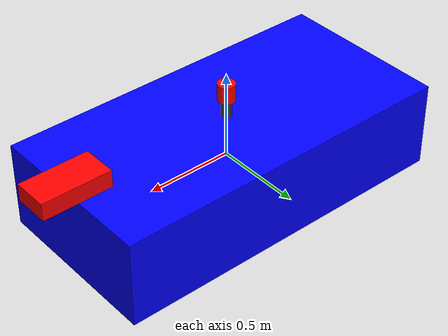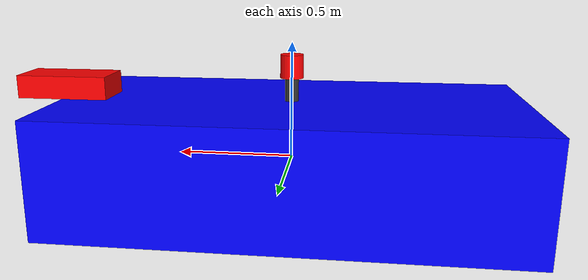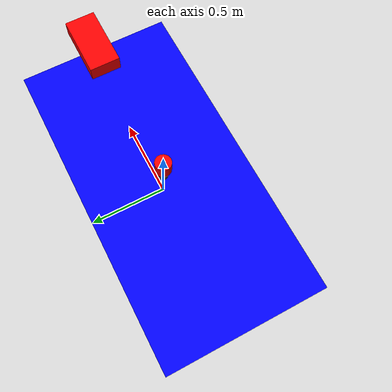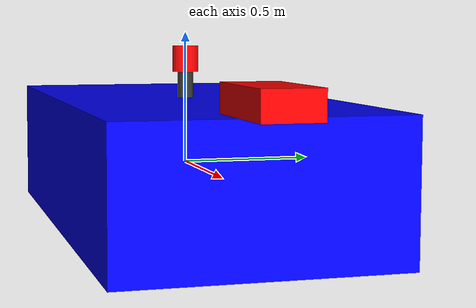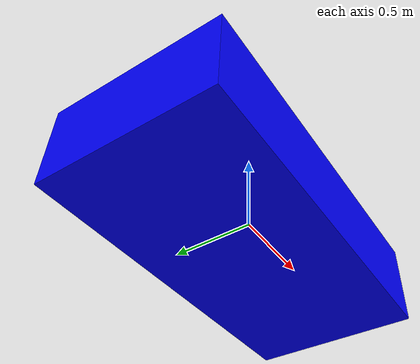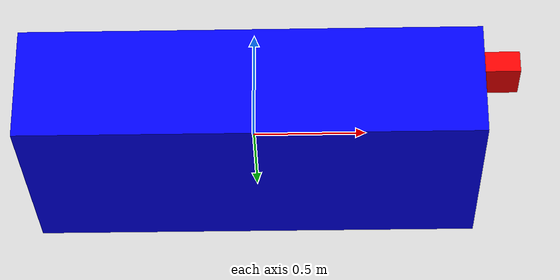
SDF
<?xml version="1.0"?>
<sdf version="1.9" xmlns:ignition="http://sdformat.org/schemas/ignition">
    <model name='chassis_model'>
        <link name='chassis_link'>

            <!-- 차체에 실질적인 IMU 센서 부착-->
            <sensor name="imu_sensor" type="imu">
                <always_on>1</always_on>
                <update_rate>30</update_rate>
                <visualize>true</visualize>
                <topic>imu</topic>
            </sensor>
            <!-- 차체에 실질적인 LIDAR 센서 부착-->
            <!-- mac m2 환경에서 호환성 문제 지속 발생-->
            <!-- lidar_frame의 위치 (car.sdf에서 1.05 0 0.5로 정의됨)를 chassis_link 기준으로 직접 설정 -->

            <!-- 라이다 센서와 차체 사이의 빈공간을 메꾸기 위한 링크 추가-->
            <visual name='lidar_empty_space_visual'>
                <pose>0 0 0.3 0 0 0</pose> <!--빈 공간의 좌표-->
                <geometry>
                    <cylinder> <!--같은 원통 모양으로 하되, 센서보다 반지름 조금 작게-->
                        <radius>0.03</radius>
                        <length>0.1</length>
                    </cylinder>
                </geometry>
                <material>
                    <ambient>0.2 0.2 0.2 1</ambient>
                    <diffuse>0.2 0.2 0.2 1</diffuse>
                </material>
            </visual>

            <collision name='lidar_empty_space_collision'>
                <pose>0 0 0.3 0 0 0</pose> <!--빈 공간의 좌표, 위와 동일-->
                <geometry>
                    <cylinder>
                        <radius>0.03</radius>
                        <length>0.1</length>
                    </cylinder>
                </geometry>
            </collision>

            <!-- 라이다 센서 위치를 시각적으로 표시하기 위한 visual 추가 -->
            <visual name='lidar_visual'>
                <pose>0 0 0.4 0 0 0</pose>
                <geometry>
                    <cylinder>
                        <radius>0.05</radius>
                        <length>0.1</length>
                    </cylinder>
                </geometry>
                <material>
                    <ambient>1.0 0.0 0.0 1</ambient>
                    <diffuse>1.0 0.0 0.0 1</diffuse>
                    <specular>1.0 0.0 0.0 1</specular>
                </material>
            </visual>
            <!--현실 세계를 생각하면 라이다 센서를 360도 돌릴려면 안에 있는 모터가 360도 돌아가면서 센서를 쏘는거라서 각 방향별로 시간차가 발생한다고함.-->
            <!--단순히 라이다 센서 태그 하나 넣고 각도를 360도 돌아라고 하면 현실 세계랑 조금 안맞는 것 같은 느낌이 있어서 상하좌우 각 방면에 카메라를 하나씩 두는 것도 고민을 했었는데 -->
            <!--일단은 완벽한 현실 재현보다는 시뮬레이션 환경에서 잘 돌아가는 강화학습 에이전트를 만드는게 우선이라고 생각해서 이렇게 진행했음.-->
            <!--update_rate를 5로 지정해둬서 0.2초에 한번씩 시뮬레이션 세상에서 멈추고 뽑아주는 거라는데 일단은 넘어감-->
            <sensor name='gpu_lidar' type='gpu_lidar'>
                <pose>0 0 0.4 0 0 0</pose>
                <topic>lidar</topic>
                <update_rate>20</update_rate>
                <ignition:frame_id>lidar_frame</ignition:frame_id> <!--ROS에서 쓰기 편하게 짧은 이름으로 해주는 것이라고 함-->
                <ray>
                    <scan>
                        <horizontal>
                            <samples>360</samples>
                            <resolution>1</resolution>
                            <min_angle>-3.141592</min_angle>
                            <max_angle>3.141592</max_angle>
                        </horizontal>
                        <!-- 수직 방향으로도 스캔이 가능하지만 이번 과제에서는 거리를 측정해서 센서값 기반으로 장애물을 회피하는거지, 드론처럼 z축 이동하는 것이 아니기 때문에 최소화로 작성하고 사용은 안 할 것임.-->
                        <vertical>
                            <samples>1</samples>
                            <resolution>0.01</resolution>
                            <min_angle>0</min_angle>
                            <max_angle>0</max_angle>
                        </vertical>
                    </scan>
                    <range>
                        <min>0.18</min>
                        <max>10.0</max>
                        <resolution>0.01</resolution>
                    </range>
                </ray>
                <always_on>1</always_on>
                <visualize>true</visualize>
            </sensor>
            <!--SSH 터널링으로 넘어오기에 데이터가 크다는 오류가 계속 나와서 320*240을 160*120으로 줄이고 주기도 30->10으로 낮춤-->
            <!--카메라의 x좌표는 처음에 복잡하게 생각하기 싫어서 차체의 끝 좌표에 설치했는데 돌출형인게 카메라가 정면을 주시할 때 더 나은거 같아서 그대로 둠.-->
            <sensor name="camera" type="camera">
                <pose>1 0 0.3 0 0 0</pose>
                <camera>
                    <horizontal_fov>1.047</horizontal_fov>
                    <image>
                        <width>160</width>
                        <height>120</height>
                    </image>
                    <clip>
                        <near>0.1</near>
                        <far>100</far>
                    </clip>
                </camera>
                <always_on>1</always_on>
                <update_rate>20</update_rate>
                <visualize>true</visualize>
                <topic>camera</topic>
                <ignition:frame_id>camera_link</ignition:frame_id>
            </sensor>

            <visual name='rgb_camera'>
                <pose>1 0 0.3 0 0 0</pose>
                <geometry>
                    <box>
                        <size>0.4 0.2 0.1</size>
                    </box>
                </geometry>
                <material>
                    <ambient>1.0 0.0 0.0 1</ambient>
                    <diffuse>1.0 0.0 0.0 1</diffuse>
                    <specular>1.0 0.0 0.0 1</specular>
                </material>
            </visual>
            <pose>0 0 0 0 0 0</pose>
            <!-- 공식 문서에 따르면 관성이라고 함.-->
            <inertial> <!--inertial
                properties of the link mass, inertia matix-->
                <mass>1.14395</mass>
                <inertia>
                    <ixx>0.095329</ixx>
                    <ixy>0</ixy>
                    <ixz>0</ixz>
                    <iyy>0.381317</iyy>
                    <iyz>0</iyz>
                    <izz>0.476646</izz>
                </inertia>
            </inertial>
            <visual name='visual'>
                <!-- 시각적으로 어떻게 보이는 지를 정의하는 부분 -->
                <geometry>
                    <!--직육면체라고함.-->
                    <box>
                        <size>2.0 1.0 0.5</size>
                    </box>
                </geometry>
                <!-- 정의한 link(여기서는 차체)의 색상을 정의하는 부분-->
                <material>
                    <ambient>0.0 0.0 1.0 1</ambient>
                    <diffuse>0.0 0.0 1.0 1</diffuse>
                    <specular>0.0 0.0 1.0 1</specular>
                </material>
            </visual>
            <!--충돌체를
            정의하는 부분. 시각적인것과 다르게 정의할 수도 있다고는 하는데. 나는 일단 똑같게.-->
            <collision name='chassis_collision'>
                <geometry>
                    <box>
                        <size>2.0 1.0 0.5</size>
                    </box>
                </geometry>
                <surface>
                    <contact>
                        <collide_bitmask>0x01</collide_bitmask>
                    </contact>
                    <friction>
                        <ode>
                            <mu>1.0</mu>
                            <mu2>1.0</mu2>
                        </ode>
                    </friction>
                </surface>
            </collision>
            <!-- 차체에 contact sensor를 부착-->

            <!-- 차체 contact sensor -->
            <sensor name="contact_sensor_chassis" type="contact">
                <contact>
                    <collision>chassis_collision</collision>
                </contact>
                <always_on>1</always_on>
                <update_rate>30</update_rate>
                <topic>contact_chassis</topic>
            </sensor>

            <!-- 카메라 충돌체 추가 (차체보다 튀어나와 있어서 필수) -->
            <collision name='camera_collision'>
                <pose>1 0 0.3 0 0 0</pose>
                <geometry>
                    <box>
                        <size>0.4 0.2 0.1</size>
                    </box>
                </geometry>
                <surface>
                    <contact>
                        <collide_bitmask>0x01</collide_bitmask>
                    </contact>
                    <friction>
                        <ode>
                            <mu>1.0</mu>
                            <mu2>1.0</mu2>
                        </ode>
                    </friction>
                </surface>
            </collision>

            <!-- 카메라 contact sensor -->
            <sensor name="contact_sensor_camera" type="contact">
                <contact>
                    <collision>camera_collision</collision>
                </contact>
                <always_on>1</always_on>
                <update_rate>30</update_rate>
                <topic>contact_camera</topic>
            </sensor>
        </link>
    </model>
</sdf>
